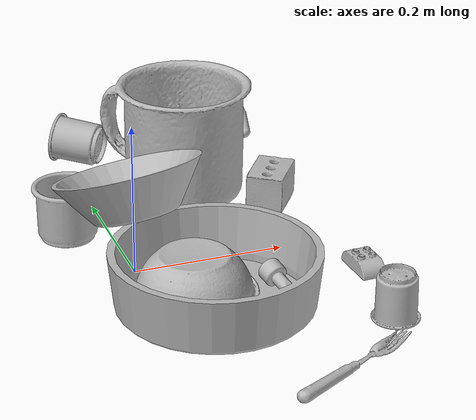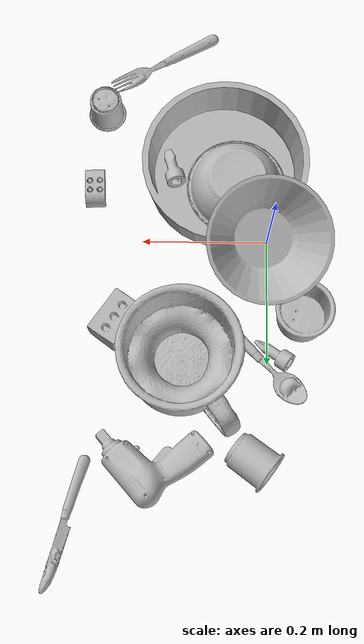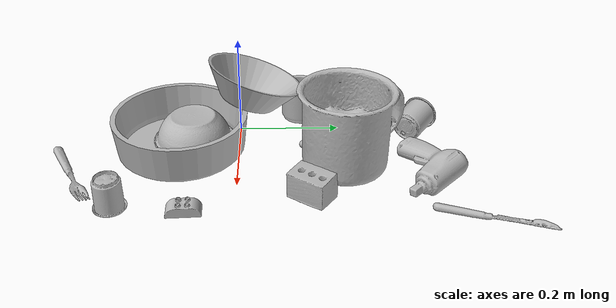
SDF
<sdf version="1.4">
  <world name="default">
    <light name="light1" type="point">
      <pose>0 0 1 0 0 0</pose>
      <diffuse>3 3 3 1</diffuse>
      <specular>3 3 3 1</specular>
    </light>
    <light name="light2" type="point">
      <pose>0 0.5 2 0 0 0</pose>
      <diffuse>1 1 1 1</diffuse>
      <specular>1 1 1 1</specular>
    </light>
    <light name="light3" type="point">
      <pose>0 0.5 2 0 0 0</pose>
      <diffuse>3 3 3 1</diffuse>
      <specular>3 3 3 1</specular>
    </light>
    <scene>
      <ambient>0.7 0.7 0.7</ambient>
    </scene>
    <model name="plate1">
      <link name="link_plate1">
        <collision name="default">
          <geometry>
            <mesh>
              <uri>model://pan_tefal/collision_meshes/collision.obj</uri>
              <scale>1.0 1.0 1.0</scale>
            </mesh>
          </geometry>
          <surface>
            <friction>
              <ode>
                <mu>0.5</mu>
                <mu2>0.5</mu2>
              </ode>
            </friction>
          <contact>
        <ode>
            <max_vel>0</max_vel>
            <min_depth>0.0001</min_depth>
            <kp>1e8</kp>
        </ode>
    </contact></surface>
        </collision>
        <visual name="default">
          <geometry>
            <mesh>
              <uri>model://pan_tefal/visual_meshes/visual.dae</uri>
              <scale>1.0 1.0 1.0</scale>
            </mesh>
          </geometry>
        </visual>
        <inertial>
          <mass>1.356081485748291</mass>
          <pose>-0.00018001878925133497 3.2792810088722035e-05 -0.008514934219419956 0.000819032333381865 -0.0003301471985614655 -0.33185384828338066</pose>
          <inertia>
            <ixx>0.009360965</ixx>
            <iyy>0.009421317</iyy>
            <izz>0.017231734</izz>
            <ixy>0</ixy>
            <ixz>0</ixz>
            <iyz>0</iyz>
          </inertia>
        </inertial>
      </link>
      <pose>0.06865758448839188 -0.11503734439611435 0.03804999589920044 1.112285187388805e-07 -1.7394995250390263e-07 -2.783208487569205</pose>
    </model>
    <model name="cup1">
      <link name="link_cup1">
        <collision name="default">
          <geometry>
            <mesh>
              <uri>model://mug/collision_meshes/collision.obj</uri>
              <scale>2.0 2.0 2.0</scale>
            </mesh>
          </geometry>
          <surface>
            <friction>
              <ode>
                <mu>0.5</mu>
                <mu2>0.5</mu2>
              </ode>
            </friction>
          <contact>
        <ode>
            <max_vel>0</max_vel>
            <min_depth>0.0001</min_depth>
            <kp>1e8</kp>
        </ode>
    </contact></surface>
        </collision>
        <visual name="default">
          <geometry>
            <mesh>
              <uri>model://mug/visual_meshes/visual.dae</uri>
              <scale>2.0 2.0 2.0</scale>
            </mesh>
          </geometry>
        </visual>
        <inertial>
          <mass>1.425228476524353</mass>
          <pose>0.019143342971801758 0.0016286519821733236 -0.021894657984375954 -0.12983169455958588 0.08737743422724535 0.05507285753370488</pose>
          <inertia>
            <ixx>0.005662833</ixx>
            <iyy>0.0063250507</iyy>
            <izz>0.0073150056</izz>
            <ixy>0</ixy>
            <ixz>0</ixz>
            <iyz>0</iyz>
          </inertia>
        </inertial>
      </link>
      <pose>0.121136374771595 0.22228151559829712 0.08189800381660461 -1.9203634645022993e-06 5.753690002823157e-06 -0.9724750292687346</pose>
    </model>
    <model name="silverware1">
      <link name="link_silverware1">
        <collision name="default">
          <geometry>
            <mesh>
              <uri>model://spoon/collision_meshes/collision.obj</uri>
              <scale>1.0 1.0 1.0</scale>
            </mesh>
          </geometry>
          <surface>
            <friction>
              <ode>
                <mu>0.5</mu>
                <mu2>0.5</mu2>
              </ode>
            </friction>
          <contact>
        <ode>
            <max_vel>0</max_vel>
            <min_depth>0.0001</min_depth>
            <kp>1e8</kp>
        </ode>
    </contact></surface>
        </collision>
        <visual name="default">
          <geometry>
            <mesh>
              <uri>model://spoon/visual_meshes/visual.dae</uri>
              <scale>1.0 1.0 1.0</scale>
            </mesh>
          </geometry>
        </visual>
        <inertial>
          <mass>0.031423501670360565</mass>
          <pose>-0.005526318680495024 -0.0016034176805987954 -0.000727165665011853 0.035217765619004186 -0.03906586018731898 0.006150610672177042</pose>
          <inertia>
            <ixx>1.7478262e-06</ixx>
            <iyy>0.0001195654</iyy>
            <izz>0.000120427336</izz>
            <ixy>0</ixy>
            <ixz>0</ixz>
            <iyz>0</iyz>
          </inertia>
        </inertial>
      </link>
      <pose>0.009704895317554474 0.1903550624847412 0.00838526152074337 0.006729433453531409 0.026892989043533596 2.3503261314517694</pose>
    </model>
    <model name="silverware2">
      <link name="link_silverware2">
        <collision name="default">
          <geometry>
            <mesh>
              <uri>model://fork/collision_meshes/collision.obj</uri>
              <scale>1.0 1.0 1.0</scale>
            </mesh>
          </geometry>
          <surface>
            <friction>
              <ode>
                <mu>0.5</mu>
                <mu2>0.5</mu2>
              </ode>
            </friction>
          <contact>
        <ode>
            <max_vel>0</max_vel>
            <min_depth>0.0001</min_depth>
            <kp>1e8</kp>
        </ode>
    </contact></surface>
        </collision>
        <visual name="default">
          <geometry>
            <mesh>
              <uri>model://fork/visual_meshes/visual.dae</uri>
              <scale>1.0 1.0 1.0</scale>
            </mesh>
          </geometry>
        </visual>
        <inertial>
          <mass>0.02368462271988392</mass>
          <pose>-0.02957003191113472 0.00046588238910771906 0.00032188621116802096 -0.013550757689210725 -0.010977831639922976 0.014453892765665301</pose>
          <inertia>
            <ixx>8.3028004e-07</ixx>
            <iyy>6.183376e-05</iyy>
            <izz>6.220513e-05</izz>
            <ixy>0</ixy>
            <ixz>0</ixz>
            <iyz>0</iyz>
          </inertia>
        </inertial>
      </link>
      <pose>0.16814567148685455 -0.3129337430000305 0.005702495109289885 -0.17980911481300535 0.025067398103704886 0.4875109573093354</pose>
    </model>
    <model name="silverware3">
      <link name="link_silverware3">
        <collision name="default">
          <geometry>
            <mesh>
              <uri>model://knife/collision_meshes/collision.obj</uri>
              <scale>1.0 1.0 1.0</scale>
            </mesh>
          </geometry>
          <surface>
            <friction>
              <ode>
                <mu>0.5</mu>
                <mu2>0.5</mu2>
              </ode>
            </friction>
          <contact>
        <ode>
            <max_vel>0</max_vel>
            <min_depth>0.0001</min_depth>
            <kp>1e8</kp>
        </ode>
    </contact></surface>
        </collision>
        <visual name="default">
          <geometry>
            <mesh>
              <uri>model://knife/visual_meshes/visual.dae</uri>
              <scale>1.0 1.0 1.0</scale>
            </mesh>
          </geometry>
        </visual>
        <inertial>
          <mass>0.023530498147010803</mass>
          <pose>-0.023785250261425972 0.0015275124460458755 5.062020863988437e-05 0.07305757972864607 0.01724841573343299 -0.007409825279630946</pose>
          <inertia>
            <ixx>6.678909e-07</ixx>
            <iyy>9.040038e-05</iyy>
            <izz>9.0615475e-05</izz>
            <ixy>0</ixy>
            <ixz>0</ixz>
            <iyz>0</iyz>
          </inertia>
        </inertial>
      </link>
      <pose>0.30758237838745117 0.448859840631485 0.005635542795062065 2.831438263452189 0.026393687068370558 1.2906549102414737</pose>
    </model>
    <model name="cup3">
      <link name="link_cup3">
        <collision name="default">
          <geometry>
            <mesh>
              <uri>model://b_cups/collision_meshes/collision.obj</uri>
              <scale>1.0 1.0 1.0</scale>
            </mesh>
          </geometry>
          <surface>
            <friction>
              <ode>
                <mu>0.5</mu>
                <mu2>0.5</mu2>
              </ode>
            </friction>
          <contact>
        <ode>
            <max_vel>0</max_vel>
            <min_depth>0.0001</min_depth>
            <kp>1e8</kp>
        </ode>
    </contact></surface>
        </collision>
        <visual name="default">
          <geometry>
            <mesh>
              <uri>model://b_cups/visual_meshes/visual.dae</uri>
              <scale>1.0 1.0 1.0</scale>
            </mesh>
          </geometry>
        </visual>
        <inertial>
          <mass>0.033049143850803375</mass>
          <pose>0.0005182002205401659 0.001805859967134893 -0.0013381808530539274 0.11356265792291019 0.03872585472979472 -0.3457023826899558</pose>
          <inertia>
            <ixx>2.1632983e-05</ixx>
            <iyy>2.1222275e-05</iyy>
            <izz>1.8203747e-05</izz>
            <ixy>0</ixy>
            <ixz>0</ixz>
            <iyz>0</iyz>
          </inertia>
        </inertial>
      </link>
      <pose>0.263440877199173 -0.21985219419002533 0.032155074179172516 3.1415872974190067 2.3089794107381226e-06 -1.4339723150489787</pose>
    </model>
    <model name="cup4">
      <link name="link_cup4">
        <collision name="default">
          <geometry>
            <mesh>
              <uri>model://h_cups/collision_meshes/collision.obj</uri>
              <scale>1.0 1.0 1.0</scale>
            </mesh>
          </geometry>
          <surface>
            <friction>
              <ode>
                <mu>0.5</mu>
                <mu2>0.5</mu2>
              </ode>
            </friction>
          <contact>
        <ode>
            <max_vel>0</max_vel>
            <min_depth>0.0001</min_depth>
            <kp>1e8</kp>
        </ode>
    </contact></surface>
        </collision>
        <visual name="default">
          <geometry>
            <mesh>
              <uri>model://h_cups/visual_meshes/visual.dae</uri>
              <scale>1.0 1.0 1.0</scale>
            </mesh>
          </geometry>
        </visual>
        <inertial>
          <mass>0.11347958445549011</mass>
          <pose>-2.7030910132452846e-05 0.00023018615320324898 -0.0018405403243377805 -0.02436217983877791 0.06545222634893223 0.12885210457354207</pose>
          <inertia>
            <ixx>0.0001465536</ixx>
            <iyy>0.00014480477</iyy>
            <izz>0.00015369456</izz>
            <ixy>0</ixy>
            <ixz>0</ixz>
            <iyz>0</iyz>
          </inertia>
        </inertial>
      </link>
      <pose>-0.05415341630578041 0.12504258751869202 0.03775827959179878 2.8262776925464996e-06 -7.876825588644712e-06 2.7223929739348893</pose>
    </model>
    <model name="cup5">
      <link name="link_cup5">
        <collision name="default">
          <geometry>
            <mesh>
              <uri>model://d_cups/collision_meshes/collision.obj</uri>
              <scale>1.0 1.0 1.0</scale>
            </mesh>
          </geometry>
          <surface>
            <friction>
              <ode>
                <mu>0.5</mu>
                <mu2>0.5</mu2>
              </ode>
            </friction>
          <contact>
        <ode>
            <max_vel>0</max_vel>
            <min_depth>0.0001</min_depth>
            <kp>1e8</kp>
        </ode>
    </contact></surface>
        </collision>
        <visual name="default">
          <geometry>
            <mesh>
              <uri>model://d_cups/visual_meshes/visual.dae</uri>
              <scale>1.0 1.0 1.0</scale>
            </mesh>
          </geometry>
        </visual>
        <inertial>
          <mass>0.039110079407691956</mass>
          <pose>0.0008068050956353545 0.0019117392366752028 -0.0022666517179459333 0.24011224021147495 -0.247107611945545 0.594295747375292</pose>
          <inertia>
            <ixx>3.2744327e-05</ixx>
            <iyy>3.2649565e-05</iyy>
            <izz>2.9639183e-05</izz>
            <ixy>0</ixy>
            <ixz>0</ixz>
            <iyz>0</iyz>
          </inertia>
        </inertial>
      </link>
      <pose>0.02430187165737152 0.35201433300971985 0.03258050978183746 1.1773811430023466 -1.3300721976867007 -1.8246414027242142</pose>
    </model>
    <model name="bowl1">
      <link name="link_bowl1">
        <collision name="default">
          <geometry>
            <mesh>
              <uri>model://bowl/collision_meshes/collision.obj</uri>
              <scale>1.0 1.0 1.0</scale>
            </mesh>
          </geometry>
          <surface>
            <friction>
              <ode>
                <mu>0.5</mu>
                <mu2>0.5</mu2>
              </ode>
            </friction>
          <contact>
        <ode>
            <max_vel>0</max_vel>
            <min_depth>0.0001</min_depth>
            <kp>1e8</kp>
        </ode>
    </contact></surface>
        </collision>
        <visual name="default">
          <geometry>
            <mesh>
              <uri>model://bowl/visual_meshes/visual.dae</uri>
              <scale>1.0 1.0 1.0</scale>
            </mesh>
          </geometry>
        </visual>
        <inertial>
          <mass>0.04740063101053238</mass>
          <pose>0.00020445372501853853 -0.001030205050483346 -0.000804265437182039 -0.015764138065403298 0.014546740803255881 0.7140373892972721</pose>
          <inertia>
            <ixx>0.00010888298</ixx>
            <iyy>0.000106450105</iyy>
            <izz>0.00018317858</izz>
            <ixy>0</ixy>
            <ixz>0</ixz>
            <iyz>0</iyz>
          </inertia>
        </inertial>
      </link>
      <pose>0.04930123686790466 -0.09160909801721573 0.034729037433862686 -3.131587904904205 -6.188998329296741e-05 -0.5588888757902936</pose>
    </model>
    <model name="bowl2">
      <link name="link_bowl2">
        <collision name="default">
          <geometry>
            <mesh>
              <uri>model://bowl_a/collision_meshes/collision.obj</uri>
              <scale>1.0 1.0 1.0</scale>
            </mesh>
          </geometry>
          <surface>
            <friction>
              <ode>
                <mu>0.5</mu>
                <mu2>0.5</mu2>
              </ode>
            </friction>
          <contact>
        <ode>
            <max_vel>0</max_vel>
            <min_depth>0.0001</min_depth>
            <kp>1e8</kp>
        </ode>
    </contact></surface>
        </collision>
        <visual name="default">
          <geometry>
            <mesh>
              <uri>model://bowl_a/visual_meshes/visual.dae</uri>
              <scale>1.0 1.0 1.0</scale>
            </mesh>
          </geometry>
        </visual>
        <inertial>
          <mass>0.4596928358078003</mass>
          <pose>0.0002786756376735866 4.731212538899854e-05 -0.001376529224216938 -0.0009805332698969178 -0.0010938264579112213 -0.1912378887702168</pose>
          <inertia>
            <ixx>0.0013087663</ixx>
            <iyy>0.0013168014</iyy>
            <izz>0.002327691</izz>
            <ixy>0</ixy>
            <ixz>0</ixz>
            <iyz>0</iyz>
          </inertia>
        </inertial>
      </link>
      <pose>0.006232957821339369 0.023814616724848747 0.10102391988039017 -0.23843096931060126 0.2636714856239246 1.1785840831239895</pose>
    </model>
    <model name="toy1">
      <link name="link_toy1">
        <collision name="default">
          <geometry>
            <mesh>
              <uri>model://d_toy_airplane/collision_meshes/collision.obj</uri>
              <scale>1.0 1.0 1.0</scale>
            </mesh>
          </geometry>
          <surface>
            <friction>
              <ode>
                <mu>0.5</mu>
                <mu2>0.5</mu2>
              </ode>
            </friction>
          <contact>
        <ode>
            <max_vel>0</max_vel>
            <min_depth>0.0001</min_depth>
            <kp>1e8</kp>
        </ode>
    </contact></surface>
        </collision>
        <visual name="default">
          <geometry>
            <mesh>
              <uri>model://d_toy_airplane/visual_meshes/visual.dae</uri>
              <scale>1.0 1.0 1.0</scale>
            </mesh>
          </geometry>
        </visual>
        <inertial>
          <mass>0.017302583903074265</mass>
          <pose>9.410295751877129e-05 -5.809326466987841e-05 -0.011728093028068542 0.00026573120399734447 0.004679044314999465 0.5192011935173154</pose>
          <inertia>
            <ixx>5.1869783e-06</ixx>
            <iyy>5.190892e-06</iyy>
            <izz>1.5659823e-06</izz>
            <ixy>0</ixy>
            <ixz>0</ixz>
            <iyz>0</iyz>
          </inertia>
        </inertial>
      </link>
      <pose>-0.007843154482543468 0.18175196647644043 0.011039393953979015 2.4247229800133367 -1.2601826042888575 0.11078924326556312</pose>
    </model>
    <model name="toy2">
      <link name="link_toy2">
        <collision name="default">
          <geometry>
            <mesh>
              <uri>model://b_toy_airplane/collision_meshes/collision.obj</uri>
              <scale>1.0 1.0 1.0</scale>
            </mesh>
          </geometry>
          <surface>
            <friction>
              <ode>
                <mu>0.5</mu>
                <mu2>0.5</mu2>
              </ode>
            </friction>
          <contact>
        <ode>
            <max_vel>0</max_vel>
            <min_depth>0.0001</min_depth>
            <kp>1e8</kp>
        </ode>
    </contact></surface>
        </collision>
        <visual name="default">
          <geometry>
            <mesh>
              <uri>model://b_toy_airplane/visual_meshes/visual.dae</uri>
              <scale>1.0 1.0 1.0</scale>
            </mesh>
          </geometry>
        </visual>
        <inertial>
          <mass>0.45341360569000244</mass>
          <pose>0.00508136535063386 0.004015584941953421 0.00954306498169899 -0.04001809497736226 -0.04022180630889015 -0.560150289687741</pose>
          <inertia>
            <ixx>0.0008417707</ixx>
            <iyy>0.00033646397</iyy>
            <izz>0.0010472467</izz>
            <ixy>0</ixy>
            <ixz>0</ixz>
            <iyz>0</iyz>
          </inertia>
        </inertial>
      </link>
      <pose>0.1753053218126297 0.3678619861602783 0.01697787642478943 0.1848765978256569 0.11349931130321014 -0.845174071963693</pose>
    </model>
    <model name="toy3">
      <link name="link_toy3">
        <collision name="default">
          <geometry>
            <mesh>
              <uri>model://a_lego_duplo/collision_meshes/collision.obj</uri>
              <scale>1.0 1.0 1.0</scale>
            </mesh>
          </geometry>
          <surface>
            <friction>
              <ode>
                <mu>0.5</mu>
                <mu2>0.5</mu2>
              </ode>
            </friction>
          <contact>
        <ode>
            <max_vel>0</max_vel>
            <min_depth>0.0001</min_depth>
            <kp>1e8</kp>
        </ode>
    </contact></surface>
        </collision>
        <visual name="default">
          <geometry>
            <mesh>
              <uri>model://a_lego_duplo/visual_meshes/visual.dae</uri>
              <scale>1.0 1.0 1.0</scale>
            </mesh>
          </geometry>
        </visual>
        <inertial>
          <mass>0.019445955753326416</mass>
          <pose>-0.00011337668547639623 0.0001851754350354895 0.00036926064058206975 -0.014116968054253443 -0.00012565964371363686 6.142473690124929e-05</pose>
          <inertia>
            <ixx>2.4931269e-06</ixx>
            <iyy>5.58515e-06</iyy>
            <izz>6.9184516e-06</izz>
            <ixy>0</ixy>
            <ixz>0</ixz>
            <iyz>0</iyz>
          </inertia>
        </inertial>
      </link>
      <pose>0.27929532527923584 -0.08905284851789474 0.012111997231841087 -2.409086088493513e-08 -8.332220020397268e-09 1.628469229754628</pose>
    </model>
    <model name="toy4">
      <link name="link_toy4">
        <collision name="default">
          <geometry>
            <mesh>
              <uri>model://foam_brick/collision_meshes/collision.obj</uri>
              <scale>1.0 1.0 1.0</scale>
            </mesh>
          </geometry>
          <surface>
            <friction>
              <ode>
                <mu>0.5</mu>
                <mu2>0.5</mu2>
              </ode>
            </friction>
          <contact>
        <ode>
            <max_vel>0</max_vel>
            <min_depth>0.0001</min_depth>
            <kp>1e8</kp>
        </ode>
    </contact></surface>
        </collision>
        <visual name="default">
          <geometry>
            <mesh>
              <uri>model://foam_brick/visual_meshes/visual.dae</uri>
              <scale>1.0 1.0 1.0</scale>
            </mesh>
          </geometry>
        </visual>
        <inertial>
          <mass>0.18476375937461853</mass>
          <pose>-0.00025224717683158815 0.0003458433784544468 -0.00025321010616607964 -0.2940193708875024 0.01727444338713918 -0.0007449870082442464</pose>
          <inertia>
            <ixx>8.070827e-05</ixx>
            <iyy>0.00012885487</iyy>
            <izz>0.00013049248</izz>
            <ixy>0</ixy>
            <ixz>0</ixz>
            <iyz>0</iyz>
          </inertia>
        </inertial>
      </link>
      <pose>0.23884126543998718 0.13586334884166718 0.025922803208231926 0.013417008175617593 0.004153170209573101 0.9616486769448546</pose>
    </model>
    <model name="toy5">
      <link name="link_toy5">
        <collision name="default">
          <geometry>
            <mesh>
              <uri>model://e_toy_airplane/collision_meshes/collision.obj</uri>
              <scale>1.0 1.0 1.0</scale>
            </mesh>
          </geometry>
          <surface>
            <friction>
              <ode>
                <mu>0.5</mu>
                <mu2>0.5</mu2>
              </ode>
            </friction>
          <contact>
        <ode>
            <max_vel>0</max_vel>
            <min_depth>0.0001</min_depth>
            <kp>1e8</kp>
        </ode>
    </contact></surface>
        </collision>
        <visual name="default">
          <geometry>
            <mesh>
              <uri>model://e_toy_airplane/visual_meshes/visual.dae</uri>
              <scale>1.0 1.0 1.0</scale>
            </mesh>
          </geometry>
        </visual>
        <inertial>
          <mass>0.01085815578699112</mass>
          <pose>0.00011740455374820158 -2.248299279017374e-05 -0.011187206953763962 0.005518501127689679 0.009228289957601814 0.15041514141603637</pose>
          <inertia>
            <ixx>3.3140323e-06</ixx>
            <iyy>3.2801318e-06</iyy>
            <izz>9.959974e-07</izz>
            <ixy>0</ixy>
            <ixz>0</ixz>
            <iyz>0</iyz>
          </inertia>
        </inertial>
      </link>
      <pose>0.15432165563106537 -0.12402064353227615 0.017817415297031403 2.4237335693820166 -1.1993965634590606 -0.5712510280603597</pose>
    </model>
  <physics type="ode">
      <max_contacts>50</max_contacts>
      <ode>
        <solver>
          <type>quick</type>
          <iters>75</iters>
        </solver>
        <constraints>
          <contact_max_correcting_vel>0</contact_max_correcting_vel>
          <contact_surface_layer>0</contact_surface_layer>
        </constraints>
      </ode>
    </physics></world>
</sdf>
